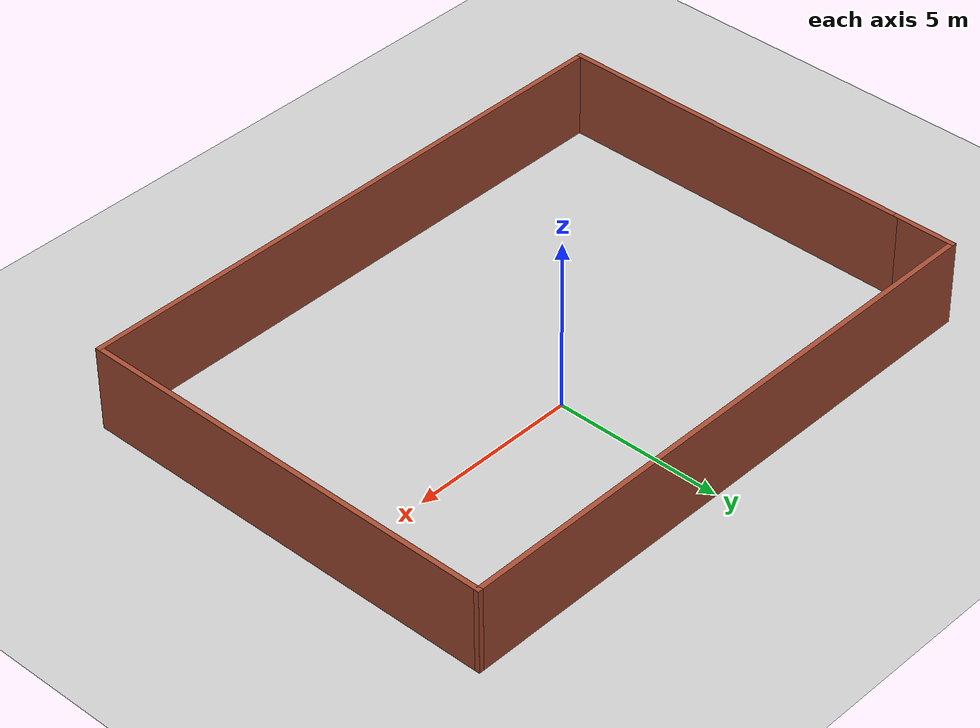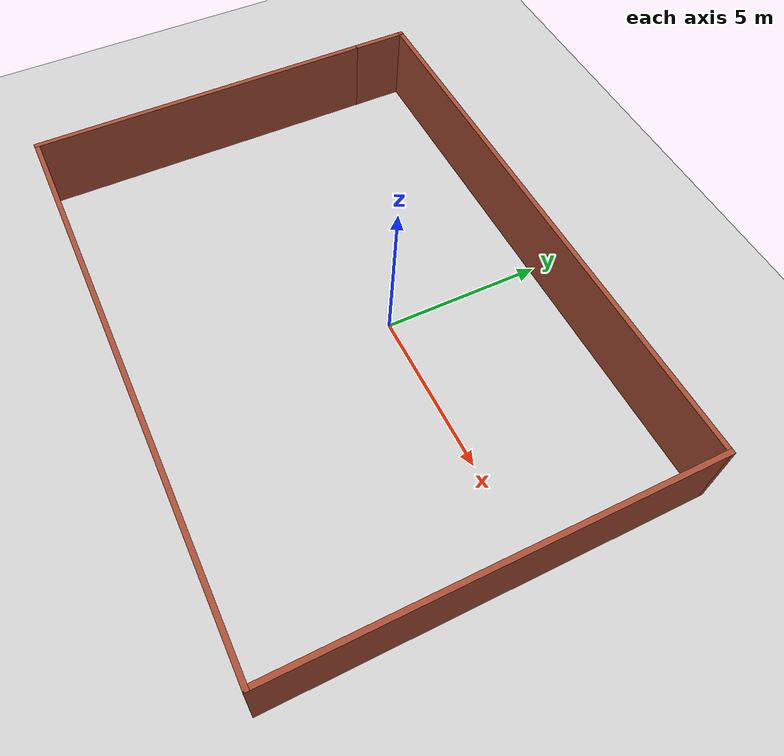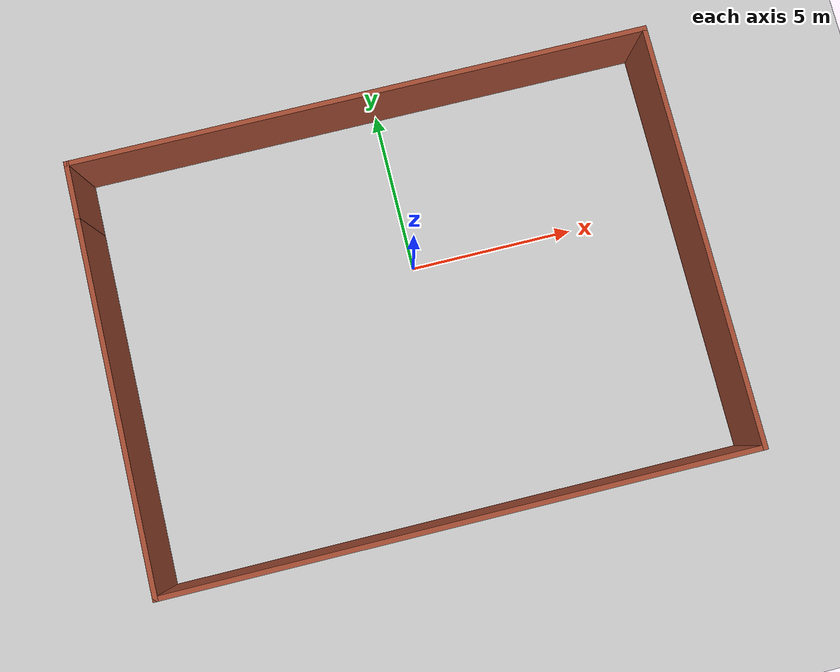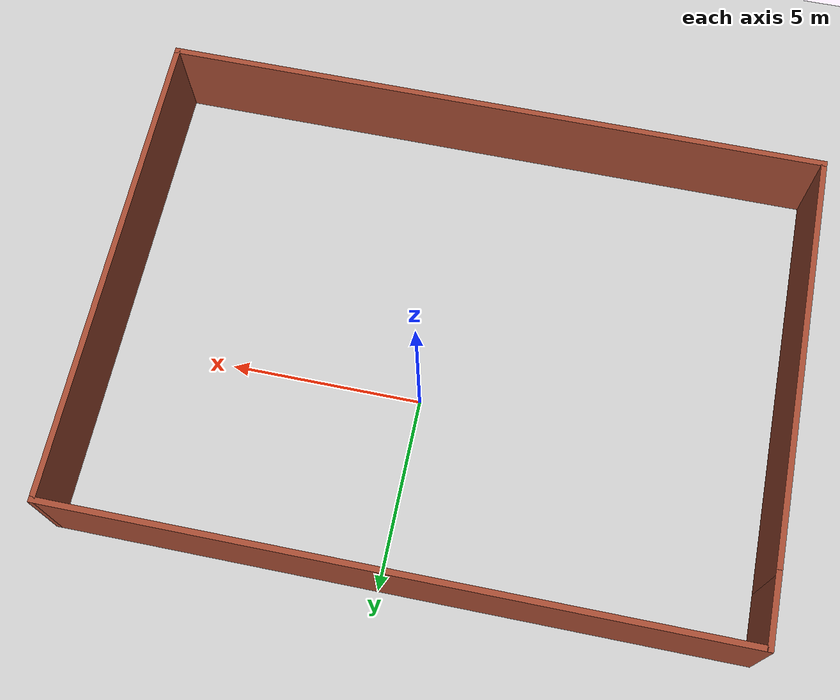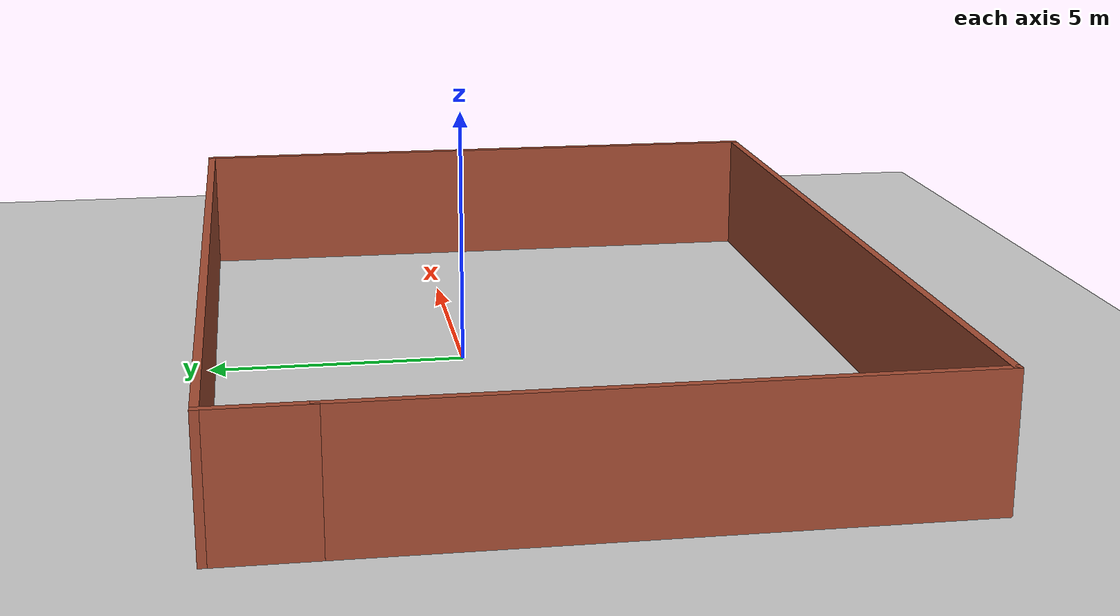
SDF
<sdf version="1.7">
 <world name="default">
  <model name="ground_plane">
   <static>1</static>
   <link name="link">
    <collision name="collision">
     <geometry><plane><normal>0 0 1</normal><size>100 100</size></plane></geometry>
     <surface><friction><ode><mu>100</mu><mu2>50</mu2></ode></friction></surface>
    </collision>
    <visual name="visual">
     <cast_shadows>0</cast_shadows>
     <geometry><plane><normal>0 0 1</normal><size>100 100</size></plane></geometry>
     <material>
      <script><uri>file://media/materials/scripts/gazebo.material</uri><name>Gazebo/Grey</name></script>
     </material>
    </visual>
   </link>
  </model>
  <light name="sun" type="directional">
   <pose>0 0 10 0 -0 0</pose>
   <diffuse>0.8 0.8 0.8 1</diffuse>
   <specular>0.2 0.2 0.2 1</specular>
   <attenuation>
    <range>1000</range>
    <constant>0.9</constant>
    <linear>0.01</linear>
    <quadratic>0.001</quadratic>
   </attenuation>
   <direction>-0.5 0.1 -0.9</direction>
   <spot><inner_angle>0</inner_angle><outer_angle>0</outer_angle><falloff>0</falloff></spot>
  </light>
  <scene><shadows>0</shadows><ambient>0.4 0.4 0.4 1</ambient><background>0.7 0.7 0.7 1</background></scene>
  <physics type="ode">
   <real_time_update_rate>1000</real_time_update_rate>
   <max_step_size>0.001</max_step_size>
   <real_time_factor>1</real_time_factor>
   <ode>
    <solver>
     <type>quick</type>
     <iters>150</iters>
     <precon_iters>0</precon_iters>
     <sor>1.4</sor>
     <use_dynamic_moi_rescaling>1</use_dynamic_moi_rescaling>
    </solver>
    <constraints>
     <cfm>1e-05</cfm>
     <erp>0.2</erp>
     <contact_max_correcting_vel>2000</contact_max_correcting_vel>
     <contact_surface_layer>0.01</contact_surface_layer>
    </constraints>
   </ode>
  </physics>
  <gravity>0 0 -9.8</gravity>
  <magnetic_field>6e-06 2.3e-05 -4.2e-05</magnetic_field>
  <atmosphere type="adiabatic"/>
  <audio><device>default</device></audio>
  <spherical_coordinates>
   <surface_model>EARTH_WGS84</surface_model>
   <latitude_deg>0</latitude_deg>
   <longitude_deg>0</longitude_deg>
   <elevation>0</elevation>
   <heading_deg>0</heading_deg>
  </spherical_coordinates>
  <model name="square">
   <pose>-0.464077 -1.34226 0 0 -0 0</pose>
   <link name="Wall_10">
    <collision name="Wall_10_Collision">
     <geometry><box><size>17.5 0.15 2.5</size></box></geometry>
     <pose>0 0 1.25 0 -0 0</pose>
    </collision>
    <visual name="Wall_10_Visual">
     <pose>0 0 1.25 0 -0 0</pose>
     <geometry><box><size>17.5 0.15 2.5</size></box></geometry>
     <material>
      <script><uri>file://media/materials/scripts/gazebo.material</uri><name>Gazebo/Bricks</name></script>
      <ambient>1 1 1 1</ambient>
     </material>
     <meta><layer>0</layer></meta>
    </visual>
    <pose>0 6.3 0 0 -0 3.14159</pose>
   </link>
   <link name="Wall_11">
    <collision name="Wall_11_Collision">
     <geometry><box><size>1.9 0.15 2.5</size></box></geometry>
     <pose>0 0 1.25 0 -0 0</pose>
    </collision>
    <visual name="Wall_11_Visual">
     <pose>0 0 1.25 0 -0 0</pose>
     <geometry><box><size>1.9 0.15 2.5</size></box></geometry>
     <material>
      <script><uri>file://media/materials/scripts/gazebo.material</uri><name>Gazebo/Bricks</name></script>
      <ambient>1 1 1 1</ambient>
     </material>
     <meta><layer>0</layer></meta>
    </visual>
    <pose>-8.675 5.425 0 0 -0 -1.5708</pose>
   </link>
   <link name="Wall_7">
    <collision name="Wall_7_Collision">
     <geometry><box><size>11 0.15 2.5</size></box></geometry>
     <pose>0 0 1.25 0 -0 0</pose>
    </collision>
    <visual name="Wall_7_Visual">
     <pose>0 0 1.25 0 -0 0</pose>
     <geometry><box><size>11 0.15 2.5</size></box></geometry>
     <material>
      <script><uri>file://media/materials/scripts/gazebo.material</uri><name>Gazebo/Bricks</name></script>
      <ambient>1 1 1 1</ambient>
     </material>
     <meta><layer>0</layer></meta>
    </visual>
    <pose>-8.675 -0.875 0 0 -0 -1.5708</pose>
   </link>
   <link name="Wall_8">
    <collision name="Wall_8_Collision">
     <geometry><box><size>17.5 0.15 2.5</size></box></geometry>
     <pose>0 0 1.25 0 -0 0</pose>
    </collision>
    <visual name="Wall_8_Visual">
     <pose>0 0 1.25 0 -0 0</pose>
     <geometry><box><size>17.5 0.15 2.5</size></box></geometry>
     <material>
      <script><uri>file://media/materials/scripts/gazebo.material</uri><name>Gazebo/Bricks</name></script>
      <ambient>1 1 1 1</ambient>
     </material>
     <meta><layer>0</layer></meta>
    </visual>
    <pose>0 -6.3 0 0 -0 0</pose>
   </link>
   <link name="Wall_9">
    <collision name="Wall_9_Collision">
     <geometry><box><size>12.75 0.15 2.5</size></box></geometry>
     <pose>0 0 1.25 0 -0 0</pose>
    </collision>
    <visual name="Wall_9_Visual">
     <pose>0 0 1.25 0 -0 0</pose>
     <geometry><box><size>12.75 0.15 2.5</size></box></geometry>
     <material>
      <script><uri>file://media/materials/scripts/gazebo.material</uri><name>Gazebo/Bricks</name></script>
      <ambient>1 1 1 1</ambient>
     </material>
     <meta><layer>0</layer></meta>
    </visual>
    <pose>8.675 0 0 0 -0 1.5708</pose>
   </link>
   <static>1</static>
  </model>
 </world>
</sdf>
